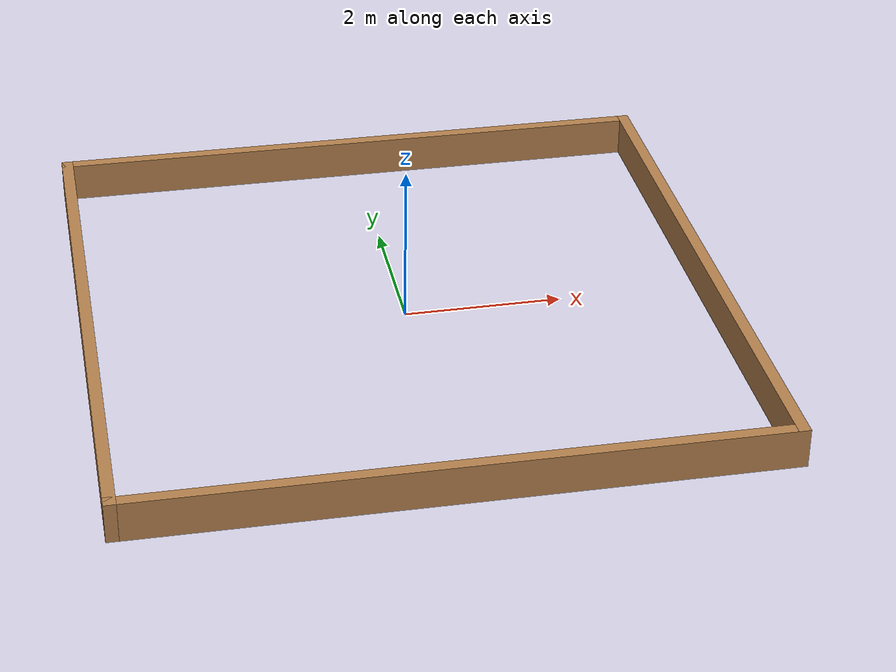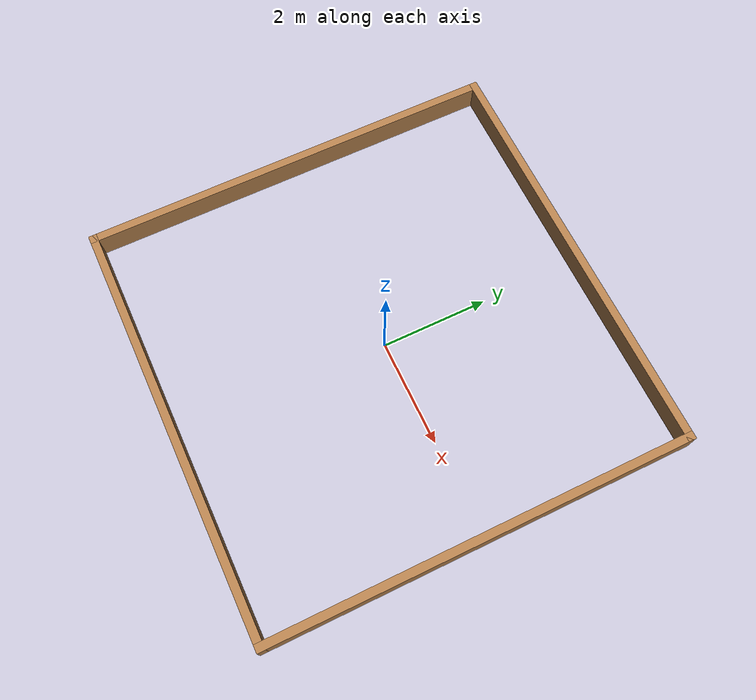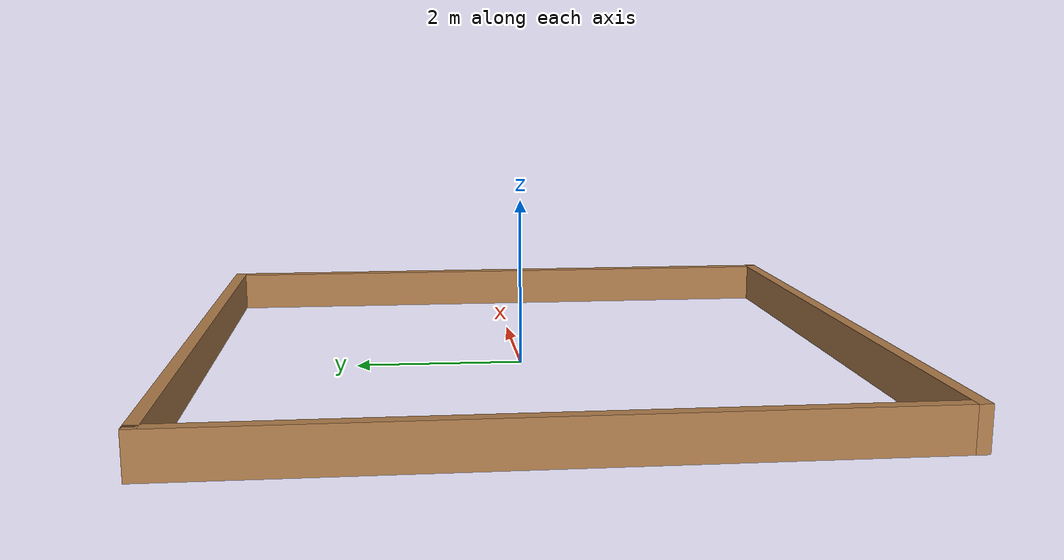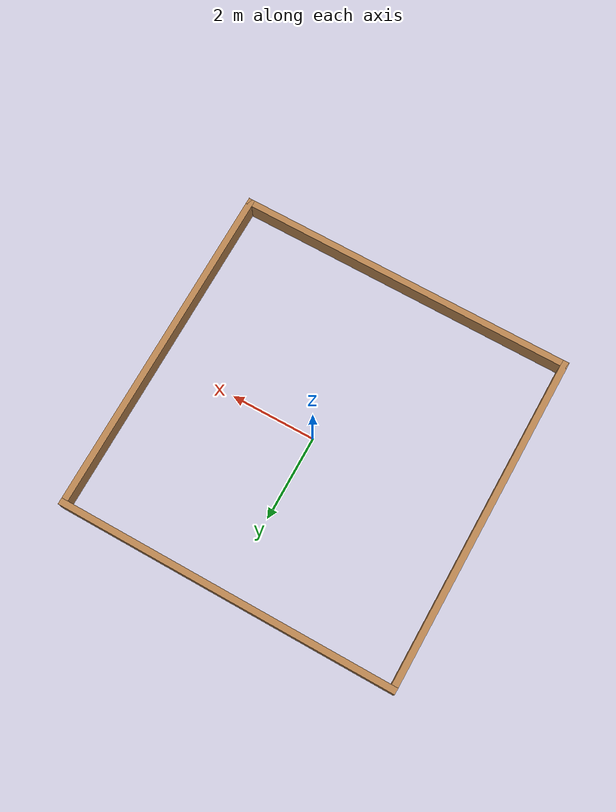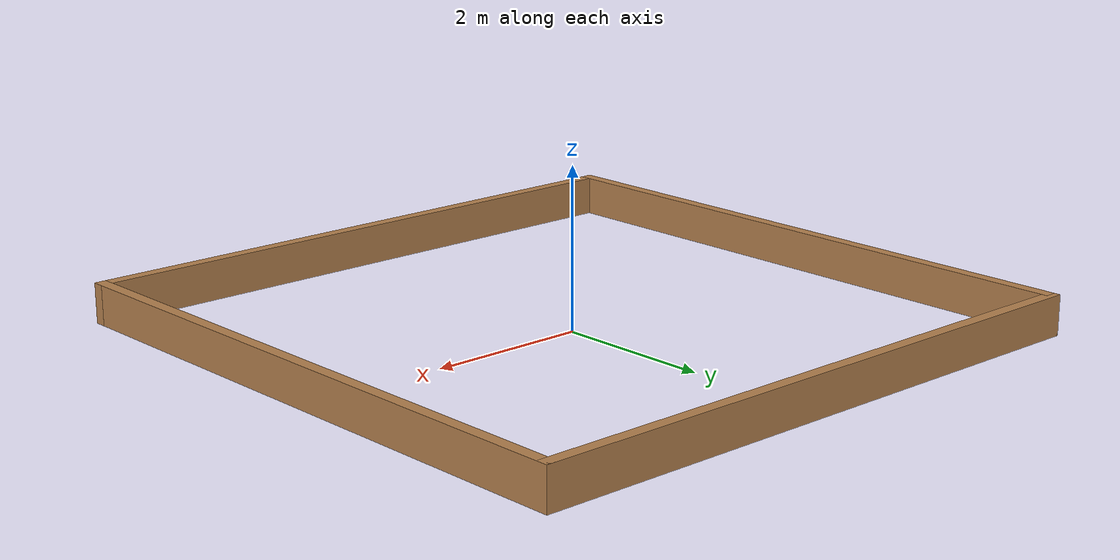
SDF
<?xml version='1.0'?>
<sdf version='1.7'>
  <model name='wall_8x8'>
    <pose>-0.075 -0.075 0 0 -0 0</pose>
    <link name='Wall_0'>
      <collision name='Wall_0_Collision'>
        <geometry>
          <box>
            <size>8 0.15 0.5</size>
          </box>
        </geometry>
        <pose>0 0 0.25 0 -0 0</pose>
      </collision>
      <visual name='Wall_0_Visual'>
        <pose>0 0 0.25 0 -0 0</pose>
        <geometry>
          <box>
            <size>8 0.15 0.5</size>
          </box>
        </geometry>
        <material>
          <script>
            <uri>file://media/materials/scripts/gazebo.material</uri>
            <name>Gazebo/Wood</name>
          </script>
          <ambient>1 1 1 1</ambient>
        </material>
        <meta>
          <layer>0</layer>
        </meta>
      </visual>
      <pose>-3.925 -0 0 0 -0 1.5708</pose>
    </link>
    <link name='Wall_5'>
      <collision name='Wall_5_Collision'>
        <geometry>
          <box>
            <size>8 0.15 0.5</size>
          </box>
        </geometry>
        <pose>0 0 0.25 0 -0 0</pose>
      </collision>
      <visual name='Wall_5_Visual'>
        <pose>0 0 0.25 0 -0 0</pose>
        <geometry>
          <box>
            <size>8 0.15 0.5</size>
          </box>
        </geometry>
        <material>
          <script>
            <uri>file://media/materials/scripts/gazebo.material</uri>
            <name>Gazebo/Wood</name>
          </script>
          <ambient>1 1 1 1</ambient>
        </material>
        <meta>
          <layer>0</layer>
        </meta>
      </visual>
      <pose>-0 3.925 0 0 -0 0</pose>
    </link>
    <link name='Wall_6'>
      <collision name='Wall_6_Collision'>
        <geometry>
          <box>
            <size>8 0.15 0.5</size>
          </box>
        </geometry>
        <pose>0 0 0.25 0 -0 0</pose>
      </collision>
      <visual name='Wall_6_Visual'>
        <pose>0 0 0.25 0 -0 0</pose>
        <geometry>
          <box>
            <size>8 0.15 0.5</size>
          </box>
        </geometry>
        <material>
          <script>
            <uri>file://media/materials/scripts/gazebo.material</uri>
            <name>Gazebo/Wood</name>
          </script>
          <ambient>1 1 1 1</ambient>
        </material>
        <meta>
          <layer>0</layer>
        </meta>
      </visual>
      <pose>3.925 -0 0 0 -0 -1.5708</pose>
    </link>
    <link name='Wall_7'>
      <collision name='Wall_7_Collision'>
        <geometry>
          <box>
            <size>8 0.15 0.5</size>
          </box>
        </geometry>
        <pose>0 0 0.25 0 -0 0</pose>
      </collision>
      <visual name='Wall_7_Visual'>
        <pose>0 0 0.25 0 -0 0</pose>
        <geometry>
          <box>
            <size>8 0.15 0.5</size>
          </box>
        </geometry>
        <material>
          <script>
            <uri>file://media/materials/scripts/gazebo.material</uri>
            <name>Gazebo/Wood</name>
          </script>
          <ambient>1 1 1 1</ambient>
        </material>
        <meta>
          <layer>0</layer>
        </meta>
      </visual>
      <pose>-0 -3.925 0 0 -0 3.14159</pose>
    </link>
    <static>1</static>
  </model>
</sdf>
